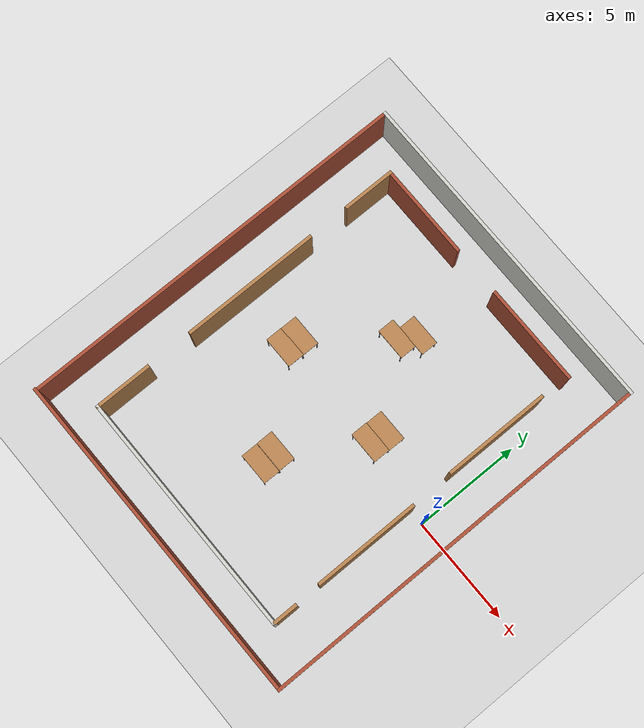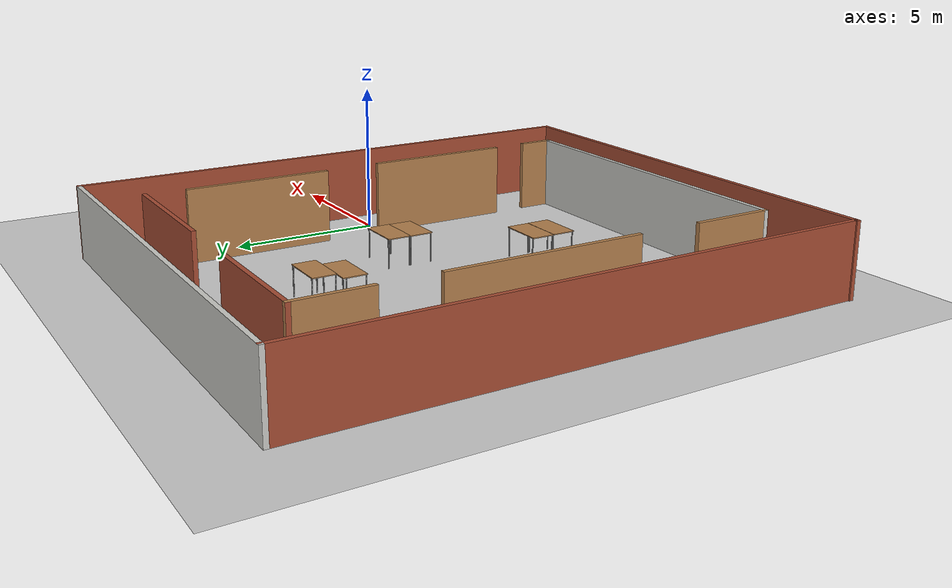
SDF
<sdf version="1.4">
 <world name="default">
  <model name="ground_plane">
   <static>1</static>
   <link name="link">
    <collision name="collision">
     <geometry><plane><normal>0 0 1</normal><size>100 100</size></plane></geometry>
     <surface><friction><ode><mu>100</mu><mu2>50</mu2></ode></friction></surface>
    </collision>
    <visual name="visual">
     <cast_shadows>0</cast_shadows>
     <geometry><plane><normal>0 0 1</normal><size>100 100</size></plane></geometry>
     <material>
      <script><uri>file://media/materials/scripts/gazebo.material</uri><name>Gazebo/Tertiary</name></script>
     </material>
    </visual>
   </link>
  </model>
  <light name="sun" type="directional">
   <pose>0 0 10 0 -0 0</pose>
   <diffuse>0.8 0.8 0.8 1</diffuse>
   <specular>0.2 0.2 0.2 1</specular>
   <attenuation>
    <range>1000</range>
    <constant>0.9</constant>
    <linear>0.01</linear>
    <quadratic>0.001</quadratic>
   </attenuation>
   <direction>-0.5 0.1 -0.9</direction>
  </light>
  <include><uri>model://open_hall3</uri><pose>-6.39 0.5 0.0 0 0 0</pose></include>
  <model name="table-01">
   <static>1</static>
   <link name="link">
    <collision name="surface">
     <pose>0 0 1 0 -0 0</pose>
     <geometry><box><size>1.5 0.8 0.03</size></box></geometry>
     <surface><friction><ode><mu>0.6</mu><mu2>0.6</mu2></ode></friction></surface>
    </collision>
    <visual name="visual1">
     <pose>0 0 1 0 -0 0</pose>
     <geometry><box><size>1.5 0.8 0.03</size></box></geometry>
     <material>
      <script><uri>file://media/materials/scripts/gazebo.material</uri><name>Gazebo/Wood</name></script>
     </material>
    </visual>
    <collision name="front_left_leg">
     <pose>0.68 0.38 0.5 0 -0 0</pose>
     <geometry><cylinder><radius>0.02</radius><length>1</length></cylinder></geometry>
    </collision>
    <visual name="front_left_leg">
     <pose>0.68 0.38 0.5 0 -0 0</pose>
     <geometry><cylinder><radius>0.02</radius><length>1</length></cylinder></geometry>
     <material>
      <script><uri>file://media/materials/scripts/gazebo.material</uri><name>Gazebo/Grey</name></script>
     </material>
    </visual>
    <collision name="front_right_leg">
     <pose>0.68 -0.38 0.5 0 -0 0</pose>
     <geometry><cylinder><radius>0.02</radius><length>1</length></cylinder></geometry>
    </collision>
    <visual name="front_right_leg">
     <pose>0.68 -0.38 0.5 0 -0 0</pose>
     <geometry><cylinder><radius>0.02</radius><length>1</length></cylinder></geometry>
     <material>
      <script><uri>file://media/materials/scripts/gazebo.material</uri><name>Gazebo/Grey</name></script>
     </material>
    </visual>
    <collision name="back_right_leg">
     <pose>-0.68 -0.38 0.5 0 -0 0</pose>
     <geometry><cylinder><radius>0.02</radius><length>1</length></cylinder></geometry>
    </collision>
    <visual name="back_right_leg">
     <pose>-0.68 -0.38 0.5 0 -0 0</pose>
     <geometry><cylinder><radius>0.02</radius><length>1</length></cylinder></geometry>
     <material>
      <script><uri>file://media/materials/scripts/gazebo.material</uri><name>Gazebo/Grey</name></script>
     </material>
    </visual>
    <collision name="back_left_leg">
     <pose>-0.68 0.38 0.5 0 -0 0</pose>
     <geometry><cylinder><radius>0.02</radius><length>1</length></cylinder></geometry>
    </collision>
    <visual name="back_left_leg">
     <pose>-0.68 0.38 0.5 0 -0 0</pose>
     <geometry><cylinder><radius>0.02</radius><length>1</length></cylinder></geometry>
     <material>
      <script><uri>file://media/materials/scripts/gazebo.material</uri><name>Gazebo/Grey</name></script>
     </material>
    </visual>
   </link>
   <pose>-6.18 -2.79 0 0 -0 0</pose>
  </model>
  <model name="table-02">
   <static>1</static>
   <link name="link">
    <collision name="surface">
     <pose>0 0 1 0 -0 0</pose>
     <geometry><box><size>1.5 0.8 0.03</size></box></geometry>
     <surface><friction><ode><mu>0.6</mu><mu2>0.6</mu2></ode></friction></surface>
    </collision>
    <visual name="visual1">
     <pose>0 0 1 0 -0 0</pose>
     <geometry><box><size>1.5 0.8 0.03</size></box></geometry>
     <material>
      <script><uri>file://media/materials/scripts/gazebo.material</uri><name>Gazebo/Wood</name></script>
     </material>
    </visual>
    <collision name="front_left_leg">
     <pose>0.68 0.38 0.5 0 -0 0</pose>
     <geometry><cylinder><radius>0.02</radius><length>1</length></cylinder></geometry>
    </collision>
    <visual name="front_left_leg">
     <pose>0.68 0.38 0.5 0 -0 0</pose>
     <geometry><cylinder><radius>0.02</radius><length>1</length></cylinder></geometry>
     <material>
      <script><uri>file://media/materials/scripts/gazebo.material</uri><name>Gazebo/Grey</name></script>
     </material>
    </visual>
    <collision name="front_right_leg">
     <pose>0.68 -0.38 0.5 0 -0 0</pose>
     <geometry><cylinder><radius>0.02</radius><length>1</length></cylinder></geometry>
    </collision>
    <visual name="front_right_leg">
     <pose>0.68 -0.38 0.5 0 -0 0</pose>
     <geometry><cylinder><radius>0.02</radius><length>1</length></cylinder></geometry>
     <material>
      <script><uri>file://media/materials/scripts/gazebo.material</uri><name>Gazebo/Grey</name></script>
     </material>
    </visual>
    <collision name="back_right_leg">
     <pose>-0.68 -0.38 0.5 0 -0 0</pose>
     <geometry><cylinder><radius>0.02</radius><length>1</length></cylinder></geometry>
    </collision>
    <visual name="back_right_leg">
     <pose>-0.68 -0.38 0.5 0 -0 0</pose>
     <geometry><cylinder><radius>0.02</radius><length>1</length></cylinder></geometry>
     <material>
      <script><uri>file://media/materials/scripts/gazebo.material</uri><name>Gazebo/Grey</name></script>
     </material>
    </visual>
    <collision name="back_left_leg">
     <pose>-0.68 0.38 0.5 0 -0 0</pose>
     <geometry><cylinder><radius>0.02</radius><length>1</length></cylinder></geometry>
    </collision>
    <visual name="back_left_leg">
     <pose>-0.68 0.38 0.5 0 -0 0</pose>
     <geometry><cylinder><radius>0.02</radius><length>1</length></cylinder></geometry>
     <material>
      <script><uri>file://media/materials/scripts/gazebo.material</uri><name>Gazebo/Grey</name></script>
     </material>
    </visual>
   </link>
   <pose>-6.17 -3.60 0 0 -0 0</pose>
  </model>
  <model name="table-03">
   <static>1</static>
   <link name="link">
    <collision name="surface">
     <pose>0 0 1 0 -0 0</pose>
     <geometry><box><size>1.5 0.8 0.03</size></box></geometry>
     <surface><friction><ode><mu>0.6</mu><mu2>0.6</mu2></ode></friction></surface>
    </collision>
    <visual name="visual1">
     <pose>0 0 1 0 -0 0</pose>
     <geometry><box><size>1.5 0.8 0.03</size></box></geometry>
     <material>
      <script><uri>file://media/materials/scripts/gazebo.material</uri><name>Gazebo/Wood</name></script>
     </material>
    </visual>
    <collision name="front_left_leg">
     <pose>0.68 0.38 0.5 0 -0 0</pose>
     <geometry><cylinder><radius>0.02</radius><length>1</length></cylinder></geometry>
    </collision>
    <visual name="front_left_leg">
     <pose>0.68 0.38 0.5 0 -0 0</pose>
     <geometry><cylinder><radius>0.02</radius><length>1</length></cylinder></geometry>
     <material>
      <script><uri>file://media/materials/scripts/gazebo.material</uri><name>Gazebo/Grey</name></script>
     </material>
    </visual>
    <collision name="front_right_leg">
     <pose>0.68 -0.38 0.5 0 -0 0</pose>
     <geometry><cylinder><radius>0.02</radius><length>1</length></cylinder></geometry>
    </collision>
    <visual name="front_right_leg">
     <pose>0.68 -0.38 0.5 0 -0 0</pose>
     <geometry><cylinder><radius>0.02</radius><length>1</length></cylinder></geometry>
     <material>
      <script><uri>file://media/materials/scripts/gazebo.material</uri><name>Gazebo/Grey</name></script>
     </material>
    </visual>
    <collision name="back_right_leg">
     <pose>-0.68 -0.38 0.5 0 -0 0</pose>
     <geometry><cylinder><radius>0.02</radius><length>1</length></cylinder></geometry>
    </collision>
    <visual name="back_right_leg">
     <pose>-0.68 -0.38 0.5 0 -0 0</pose>
     <geometry><cylinder><radius>0.02</radius><length>1</length></cylinder></geometry>
     <material>
      <script><uri>file://media/materials/scripts/gazebo.material</uri><name>Gazebo/Grey</name></script>
     </material>
    </visual>
    <collision name="back_left_leg">
     <pose>-0.68 0.38 0.5 0 -0 0</pose>
     <geometry><cylinder><radius>0.02</radius><length>1</length></cylinder></geometry>
    </collision>
    <visual name="back_left_leg">
     <pose>-0.68 0.38 0.5 0 -0 0</pose>
     <geometry><cylinder><radius>0.02</radius><length>1</length></cylinder></geometry>
     <material>
      <script><uri>file://media/materials/scripts/gazebo.material</uri><name>Gazebo/Grey</name></script>
     </material>
    </visual>
   </link>
   <pose>-9.34 0.31 0 0 -0 0</pose>
  </model>
  <model name="table-04">
   <static>1</static>
   <link name="link">
    <collision name="surface">
     <pose>0 0 1 0 -0 0</pose>
     <geometry><box><size>1.5 0.8 0.03</size></box></geometry>
     <surface><friction><ode><mu>0.6</mu><mu2>0.6</mu2></ode></friction></surface>
    </collision>
    <visual name="visual1">
     <pose>0 0 1 0 -0 0</pose>
     <geometry><box><size>1.5 0.8 0.03</size></box></geometry>
     <material>
      <script><uri>file://media/materials/scripts/gazebo.material</uri><name>Gazebo/Wood</name></script>
     </material>
    </visual>
    <collision name="front_left_leg">
     <pose>0.68 0.38 0.5 0 -0 0</pose>
     <geometry><cylinder><radius>0.02</radius><length>1</length></cylinder></geometry>
    </collision>
    <visual name="front_left_leg">
     <pose>0.68 0.38 0.5 0 -0 0</pose>
     <geometry><cylinder><radius>0.02</radius><length>1</length></cylinder></geometry>
     <material>
      <script><uri>file://media/materials/scripts/gazebo.material</uri><name>Gazebo/Grey</name></script>
     </material>
    </visual>
    <collision name="front_right_leg">
     <pose>0.68 -0.38 0.5 0 -0 0</pose>
     <geometry><cylinder><radius>0.02</radius><length>1</length></cylinder></geometry>
    </collision>
    <visual name="front_right_leg">
     <pose>0.68 -0.38 0.5 0 -0 0</pose>
     <geometry><cylinder><radius>0.02</radius><length>1</length></cylinder></geometry>
     <material>
      <script><uri>file://media/materials/scripts/gazebo.material</uri><name>Gazebo/Grey</name></script>
     </material>
    </visual>
    <collision name="back_right_leg">
     <pose>-0.68 -0.38 0.5 0 -0 0</pose>
     <geometry><cylinder><radius>0.02</radius><length>1</length></cylinder></geometry>
    </collision>
    <visual name="back_right_leg">
     <pose>-0.68 -0.38 0.5 0 -0 0</pose>
     <geometry><cylinder><radius>0.02</radius><length>1</length></cylinder></geometry>
     <material>
      <script><uri>file://media/materials/scripts/gazebo.material</uri><name>Gazebo/Grey</name></script>
     </material>
    </visual>
    <collision name="back_left_leg">
     <pose>-0.68 0.38 0.5 0 -0 0</pose>
     <geometry><cylinder><radius>0.02</radius><length>1</length></cylinder></geometry>
    </collision>
    <visual name="back_left_leg">
     <pose>-0.68 0.38 0.5 0 -0 0</pose>
     <geometry><cylinder><radius>0.02</radius><length>1</length></cylinder></geometry>
     <material>
      <script><uri>file://media/materials/scripts/gazebo.material</uri><name>Gazebo/Grey</name></script>
     </material>
    </visual>
   </link>
   <pose>-9.33 1.09 0 0 -0 0</pose>
  </model>
  <model name="table-05">
   <static>1</static>
   <link name="link">
    <collision name="surface">
     <pose>0 0 1 0 -0 0</pose>
     <geometry><box><size>1.5 0.8 0.03</size></box></geometry>
     <surface><friction><ode><mu>0.6</mu><mu2>0.6</mu2></ode></friction></surface>
    </collision>
    <visual name="visual1">
     <pose>0 0 1 0 -0 0</pose>
     <geometry><box><size>1.5 0.8 0.03</size></box></geometry>
     <material>
      <script><uri>file://media/materials/scripts/gazebo.material</uri><name>Gazebo/Wood</name></script>
     </material>
    </visual>
    <collision name="front_left_leg">
     <pose>0.68 0.38 0.5 0 -0 0</pose>
     <geometry><cylinder><radius>0.02</radius><length>1</length></cylinder></geometry>
    </collision>
    <visual name="front_left_leg">
     <pose>0.68 0.38 0.5 0 -0 0</pose>
     <geometry><cylinder><radius>0.02</radius><length>1</length></cylinder></geometry>
     <material>
      <script><uri>file://media/materials/scripts/gazebo.material</uri><name>Gazebo/Grey</name></script>
     </material>
    </visual>
    <collision name="front_right_leg">
     <pose>0.68 -0.38 0.5 0 -0 0</pose>
     <geometry><cylinder><radius>0.02</radius><length>1</length></cylinder></geometry>
    </collision>
    <visual name="front_right_leg">
     <pose>0.68 -0.38 0.5 0 -0 0</pose>
     <geometry><cylinder><radius>0.02</radius><length>1</length></cylinder></geometry>
     <material>
      <script><uri>file://media/materials/scripts/gazebo.material</uri><name>Gazebo/Grey</name></script>
     </material>
    </visual>
    <collision name="back_right_leg">
     <pose>-0.68 -0.38 0.5 0 -0 0</pose>
     <geometry><cylinder><radius>0.02</radius><length>1</length></cylinder></geometry>
    </collision>
    <visual name="back_right_leg">
     <pose>-0.68 -0.38 0.5 0 -0 0</pose>
     <geometry><cylinder><radius>0.02</radius><length>1</length></cylinder></geometry>
     <material>
      <script><uri>file://media/materials/scripts/gazebo.material</uri><name>Gazebo/Grey</name></script>
     </material>
    </visual>
    <collision name="back_left_leg">
     <pose>-0.68 0.38 0.5 0 -0 0</pose>
     <geometry><cylinder><radius>0.02</radius><length>1</length></cylinder></geometry>
    </collision>
    <visual name="back_left_leg">
     <pose>-0.68 0.38 0.5 0 -0 0</pose>
     <geometry><cylinder><radius>0.02</radius><length>1</length></cylinder></geometry>
     <material>
      <script><uri>file://media/materials/scripts/gazebo.material</uri><name>Gazebo/Grey</name></script>
     </material>
    </visual>
   </link>
   <pose>-3.92 1.27 0 0 -0 0</pose>
  </model>
  <model name="table-06">
   <static>1</static>
   <link name="link">
    <collision name="surface">
     <pose>0 0 1 0 -0 0</pose>
     <geometry><box><size>1.5 0.8 0.03</size></box></geometry>
     <surface><friction><ode><mu>0.6</mu><mu2>0.6</mu2></ode></friction></surface>
    </collision>
    <visual name="visual1">
     <pose>0 0 1 0 -0 0</pose>
     <geometry><box><size>1.5 0.8 0.03</size></box></geometry>
     <material>
      <script><uri>file://media/materials/scripts/gazebo.material</uri><name>Gazebo/Wood</name></script>
     </material>
    </visual>
    <collision name="front_left_leg">
     <pose>0.68 0.38 0.5 0 -0 0</pose>
     <geometry><cylinder><radius>0.02</radius><length>1</length></cylinder></geometry>
    </collision>
    <visual name="front_left_leg">
     <pose>0.68 0.38 0.5 0 -0 0</pose>
     <geometry><cylinder><radius>0.02</radius><length>1</length></cylinder></geometry>
     <material>
      <script><uri>file://media/materials/scripts/gazebo.material</uri><name>Gazebo/Grey</name></script>
     </material>
    </visual>
    <collision name="front_right_leg">
     <pose>0.68 -0.38 0.5 0 -0 0</pose>
     <geometry><cylinder><radius>0.02</radius><length>1</length></cylinder></geometry>
    </collision>
    <visual name="front_right_leg">
     <pose>0.68 -0.38 0.5 0 -0 0</pose>
     <geometry><cylinder><radius>0.02</radius><length>1</length></cylinder></geometry>
     <material>
      <script><uri>file://media/materials/scripts/gazebo.material</uri><name>Gazebo/Grey</name></script>
     </material>
    </visual>
    <collision name="back_right_leg">
     <pose>-0.68 -0.38 0.5 0 -0 0</pose>
     <geometry><cylinder><radius>0.02</radius><length>1</length></cylinder></geometry>
    </collision>
    <visual name="back_right_leg">
     <pose>-0.68 -0.38 0.5 0 -0 0</pose>
     <geometry><cylinder><radius>0.02</radius><length>1</length></cylinder></geometry>
     <material>
      <script><uri>file://media/materials/scripts/gazebo.material</uri><name>Gazebo/Grey</name></script>
     </material>
    </visual>
    <collision name="back_left_leg">
     <pose>-0.68 0.38 0.5 0 -0 0</pose>
     <geometry><cylinder><radius>0.02</radius><length>1</length></cylinder></geometry>
    </collision>
    <visual name="back_left_leg">
     <pose>-0.68 0.38 0.5 0 -0 0</pose>
     <geometry><cylinder><radius>0.02</radius><length>1</length></cylinder></geometry>
     <material>
      <script><uri>file://media/materials/scripts/gazebo.material</uri><name>Gazebo/Grey</name></script>
     </material>
    </visual>
   </link>
   <pose>-3.94 0.48 0 0 -0 0</pose>
  </model>
  <model name="table-07">
   <static>1</static>
   <link name="link">
    <collision name="surface">
     <pose>0 0 1 0 -0 0</pose>
     <geometry><box><size>1.5 0.8 0.03</size></box></geometry>
     <surface><friction><ode><mu>0.6</mu><mu2>0.6</mu2></ode></friction></surface>
    </collision>
    <visual name="visual1">
     <pose>0 0 1 0 -0 0</pose>
     <geometry><box><size>1.5 0.8 0.03</size></box></geometry>
     <material>
      <script><uri>file://media/materials/scripts/gazebo.material</uri><name>Gazebo/Wood</name></script>
     </material>
    </visual>
    <collision name="front_left_leg">
     <pose>0.68 0.38 0.5 0 -0 0</pose>
     <geometry><cylinder><radius>0.02</radius><length>1</length></cylinder></geometry>
    </collision>
    <visual name="front_left_leg">
     <pose>0.68 0.38 0.5 0 -0 0</pose>
     <geometry><cylinder><radius>0.02</radius><length>1</length></cylinder></geometry>
     <material>
      <script><uri>file://media/materials/scripts/gazebo.material</uri><name>Gazebo/Grey</name></script>
     </material>
    </visual>
    <collision name="front_right_leg">
     <pose>0.68 -0.38 0.5 0 -0 0</pose>
     <geometry><cylinder><radius>0.02</radius><length>1</length></cylinder></geometry>
    </collision>
    <visual name="front_right_leg">
     <pose>0.68 -0.38 0.5 0 -0 0</pose>
     <geometry><cylinder><radius>0.02</radius><length>1</length></cylinder></geometry>
     <material>
      <script><uri>file://media/materials/scripts/gazebo.material</uri><name>Gazebo/Grey</name></script>
     </material>
    </visual>
    <collision name="back_right_leg">
     <pose>-0.68 -0.38 0.5 0 -0 0</pose>
     <geometry><cylinder><radius>0.02</radius><length>1</length></cylinder></geometry>
    </collision>
    <visual name="back_right_leg">
     <pose>-0.68 -0.38 0.5 0 -0 0</pose>
     <geometry><cylinder><radius>0.02</radius><length>1</length></cylinder></geometry>
     <material>
      <script><uri>file://media/materials/scripts/gazebo.material</uri><name>Gazebo/Grey</name></script>
     </material>
    </visual>
    <collision name="back_left_leg">
     <pose>-0.68 0.38 0.5 0 -0 0</pose>
     <geometry><cylinder><radius>0.02</radius><length>1</length></cylinder></geometry>
    </collision>
    <visual name="back_left_leg">
     <pose>-0.68 0.38 0.5 0 -0 0</pose>
     <geometry><cylinder><radius>0.02</radius><length>1</length></cylinder></geometry>
     <material>
      <script><uri>file://media/materials/scripts/gazebo.material</uri><name>Gazebo/Grey</name></script>
     </material>
    </visual>
   </link>
   <pose>-6.60 4.18 0 0 -0 0</pose>
  </model>
  <model name="table-08">
   <static>1</static>
   <link name="link">
    <collision name="surface">
     <pose>0 0 1 0 -0 0</pose>
     <geometry><box><size>1.5 0.8 0.03</size></box></geometry>
     <surface><friction><ode><mu>0.6</mu><mu2>0.6</mu2></ode></friction></surface>
    </collision>
    <visual name="visual1">
     <pose>0 0 1 0 -0 0</pose>
     <geometry><box><size>1.5 0.8 0.03</size></box></geometry>
     <material>
      <script><uri>file://media/materials/scripts/gazebo.material</uri><name>Gazebo/Wood</name></script>
     </material>
    </visual>
    <collision name="front_left_leg">
     <pose>0.68 0.38 0.5 0 -0 0</pose>
     <geometry><cylinder><radius>0.02</radius><length>1</length></cylinder></geometry>
    </collision>
    <visual name="front_left_leg">
     <pose>0.68 0.38 0.5 0 -0 0</pose>
     <geometry><cylinder><radius>0.02</radius><length>1</length></cylinder></geometry>
     <material>
      <script><uri>file://media/materials/scripts/gazebo.material</uri><name>Gazebo/Grey</name></script>
     </material>
    </visual>
    <collision name="front_right_leg">
     <pose>0.68 -0.38 0.5 0 -0 0</pose>
     <geometry><cylinder><radius>0.02</radius><length>1</length></cylinder></geometry>
    </collision>
    <visual name="front_right_leg">
     <pose>0.68 -0.38 0.5 0 -0 0</pose>
     <geometry><cylinder><radius>0.02</radius><length>1</length></cylinder></geometry>
     <material>
      <script><uri>file://media/materials/scripts/gazebo.material</uri><name>Gazebo/Grey</name></script>
     </material>
    </visual>
    <collision name="back_right_leg">
     <pose>-0.68 -0.38 0.5 0 -0 0</pose>
     <geometry><cylinder><radius>0.02</radius><length>1</length></cylinder></geometry>
    </collision>
    <visual name="back_right_leg">
     <pose>-0.68 -0.38 0.5 0 -0 0</pose>
     <geometry><cylinder><radius>0.02</radius><length>1</length></cylinder></geometry>
     <material>
      <script><uri>file://media/materials/scripts/gazebo.material</uri><name>Gazebo/Grey</name></script>
     </material>
    </visual>
    <collision name="back_left_leg">
     <pose>-0.68 0.38 0.5 0 -0 0</pose>
     <geometry><cylinder><radius>0.02</radius><length>1</length></cylinder></geometry>
    </collision>
    <visual name="back_left_leg">
     <pose>-0.68 0.38 0.5 0 -0 0</pose>
     <geometry><cylinder><radius>0.02</radius><length>1</length></cylinder></geometry>
     <material>
      <script><uri>file://media/materials/scripts/gazebo.material</uri><name>Gazebo/Grey</name></script>
     </material>
    </visual>
   </link>
   <pose>-6.15 4.96 0 0 -0 0</pose>
  </model>
 </world>
</sdf>
